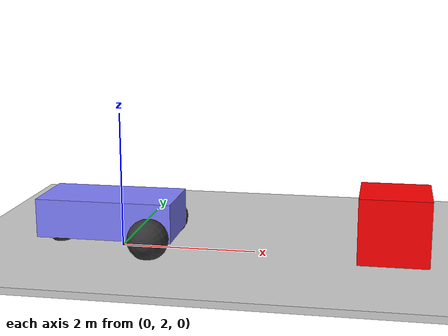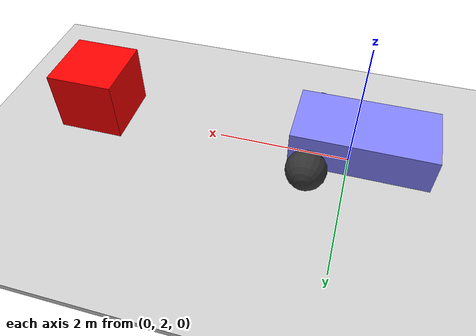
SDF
<?xml version="1.0" ?>
<!--
  You can echo lidar messages using:
    gz topic -e -t /lidar
-->
<sdf version="1.6">
  <world name="gpu_lidar_sensor">
    <physics name="1ms" type="ignored">
      <max_step_size>0.001</max_step_size>
      <real_time_factor>1.0</real_time_factor>
    </physics>
    <plugin
      filename="gz-sim-physics-system"
      name="gz::sim::systems::Physics">
    </plugin>
    <plugin
      filename="gz-sim-sensors-system"
      name="gz::sim::systems::Sensors">
      <render_engine>ogre2</render_engine>
    </plugin>
    <plugin
      filename="gz-sim-scene-broadcaster-system"
      name="gz::sim::systems::SceneBroadcaster">
    </plugin>
    <plugin
      filename="gz-sim-user-commands-system"
      name="gz::sim::systems::UserCommands">
    </plugin>

    <light type="directional" name="sun">
      <cast_shadows>true</cast_shadows>
      <pose>0 0 10 0 0 0</pose>
      <diffuse>0.8 0.8 0.8 1</diffuse>
      <specular>0.2 0.2 0.2 1</specular>
      <attenuation>
        <range>1000</range>
        <constant>0.9</constant>
        <linear>0.01</linear>
        <quadratic>0.001</quadratic>
      </attenuation>
      <direction>-0.5 0.1 -0.9</direction>
    </light>

    <model name="ground_plane">
      <static>true</static>
      <link name="link">
        <collision name="collision">
          <geometry>
            <box>
              <size>20 20 0.1</size>
            </box>
          </geometry>
        </collision>
        <visual name="visual">
          <geometry>
            <box>
              <size>20 20 0.1</size>
            </box>
          </geometry>
          <material>
            <ambient>0.8 0.8 0.8 1</ambient>
            <diffuse>0.8 0.8 0.8 1</diffuse>
            <specular>0.8 0.8 0.8 1</specular>
          </material>
        </visual>
      </link>
    </model>

    <model name='vehicle_blue'>
      <pose>0 2 0.325 0 -0 0</pose>
      <link name='chassis'>
        <pose>-0.151427 -0 0.175 0 -0 0</pose>
        <inertial>
          <mass>1.14395</mass>
          <inertia>
            <ixx>0.126164</ixx>
            <ixy>0</ixy>
            <ixz>0</ixz>
            <iyy>0.416519</iyy>
            <iyz>0</iyz>
            <izz>0.481014</izz>
          </inertia>
        </inertial>
        <visual name='visual'>
          <geometry>
            <box>
              <size>2.01142 1 0.568726</size>
            </box>
          </geometry>
          <material>
            <ambient>0.5 0.5 1.0 1</ambient>
            <diffuse>0.5 0.5 1.0 1</diffuse>
            <specular>0.0 0.0 1.0 1</specular>
          </material>
        </visual>
        <collision name='collision'>
          <geometry>
            <box>
              <size>2.01142 1 0.568726</size>
            </box>
          </geometry>
        </collision>

      </link>

      <link name="lidar_link">
        <pose>0.05 0 0.3 0 0 0</pose>
        <sensor name='gpu_lidar' type='gpu_lidar'>
          <topic>lidar</topic>
          <update_rate>10</update_rate>
          <lidar>
            <scan>
              <horizontal>
                <samples>640</samples>
                <resolution>1</resolution>
                <min_angle>-1.396263</min_angle>
                <max_angle>1.396263</max_angle>
              </horizontal>
              <vertical>
                <samples>16</samples>
                <resolution>1</resolution>
                <min_angle>-0.261799</min_angle>
                <max_angle>0.261799</max_angle>
              </vertical>
            </scan>
            <range>
              <min>0.08</min>
              <max>10.0</max>
              <resolution>0.01</resolution>
            </range>
          </lidar>
          <alwaysOn>1</alwaysOn>
          <visualize>true</visualize>
        </sensor>
      </link>

      <joint name="lidar_joint" type="fixed">
        <parent>chassis</parent>
        <child>lidar_link</child>
      </joint>

       <!-- Base footprint -->
          <link name="base_footprint">
      <pose>0 0 0 0 0 0</pose> <!-- Positioned at ground level -->
    </link>

    <!-- Fixed joint connecting base_footprint to base_link -->
    <joint name="base_footprint_joint" type="fixed">
      <parent>base_footprint</parent>
      <child>chassis</child>
    </joint>

      <link name='left_wheel'>
        <pose>0.554283 0.625029 -0.025 -1.5707 0 0</pose>
        <inertial>
          <mass>2</mass>
          <inertia>
            <ixx>0.145833</ixx>
            <ixy>0</ixy>
            <ixz>0</ixz>
            <iyy>0.145833</iyy>
            <iyz>0</iyz>
            <izz>0.125</izz>
          </inertia>
        </inertial>
        <visual name='visual'>
          <geometry>
            <sphere>
              <radius>0.3</radius>
            </sphere>
          </geometry>
          <material>
            <ambient>0.2 0.2 0.2 1</ambient>
            <diffuse>0.2 0.2 0.2 1</diffuse>
            <specular>0.2 0.2 0.2 1</specular>
          </material>
        </visual>
        <collision name='collision'>
          <geometry>
            <sphere>
              <radius>0.3</radius>
            </sphere>
          </geometry>
          <surface>
            <friction>
              <ode>
                <mu>1</mu>
                <mu2>1</mu2>
                <slip1>0.035</slip1>
                <slip2>0</slip2>
                <fdir1>0 0 1</fdir1>
              </ode>
              <bullet>
                <friction>1</friction>
                <friction2>1</friction2>
                <rolling_friction>0.1</rolling_friction>
              </bullet>
            </friction>
          </surface>
        </collision>
      </link>

      <link name='right_wheel'>
        <pose>0.554282 -0.625029 -0.025 -1.5707 0 0</pose>
        <inertial>
          <mass>2</mass>
          <inertia>
            <ixx>0.145833</ixx>
            <ixy>0</ixy>
            <ixz>0</ixz>
            <iyy>0.145833</iyy>
            <iyz>0</iyz>
            <izz>0.125</izz>
          </inertia>
        </inertial>
        <visual name='visual'>
          <geometry>
            <sphere>
              <radius>0.3</radius>
            </sphere>
          </geometry>
          <material>
            <ambient>0.2 0.2 0.2 1</ambient>
            <diffuse>0.2 0.2 0.2 1</diffuse>
            <specular>0.2 0.2 0.2 1</specular>
          </material>
        </visual>
        <collision name='collision'>
          <geometry>
            <sphere>
              <radius>0.3</radius>
            </sphere>
          </geometry>
          <surface>
            <friction>
              <ode>
                <mu>1</mu>
                <mu2>1</mu2>
                <slip1>0.035</slip1>
                <slip2>0</slip2>
                <fdir1>0 0 1</fdir1>
              </ode>
              <bullet>
                <friction>1</friction>
                <friction2>1</friction2>
                <rolling_friction>0.1</rolling_friction>
              </bullet>
            </friction>
          </surface>
        </collision>
      </link>

      <link name='caster'>
        <pose>-0.957138 -0 -0.125 0 -0 0</pose>
        <inertial>
          <mass>1</mass>
          <inertia>
            <ixx>0.1</ixx>
            <ixy>0</ixy>
            <ixz>0</ixz>
            <iyy>0.1</iyy>
            <iyz>0</iyz>
            <izz>0.1</izz>
          </inertia>
        </inertial>
        <visual name='visual'>
          <geometry>
            <sphere>
              <radius>0.2</radius>
            </sphere>
          </geometry>
          <material>
            <ambient>0.2 0.2 0.2 1</ambient>
            <diffuse>0.2 0.2 0.2 1</diffuse>
            <specular>0.2 0.2 0.2 1</specular>
          </material>
        </visual>
        <collision name='collision'>
          <geometry>
            <sphere>
              <radius>0.2</radius>
            </sphere>
          </geometry>
        </collision>
      </link>

      <joint name='left_wheel_joint' type='revolute'>
        <parent>chassis</parent>
        <child>left_wheel</child>
        <axis>
          <xyz>0 0 1</xyz>
          <limit>
            <lower>-1.79769e+308</lower>
            <upper>1.79769e+308</upper>
          </limit>
        </axis>
      </joint>

      <joint name='right_wheel_joint' type='revolute'>
        <parent>chassis</parent>
        <child>right_wheel</child>
        <axis>
          <xyz>0 0 1</xyz>
          <limit>
            <lower>-1.79769e+308</lower>
            <upper>1.79769e+308</upper>
          </limit>
        </axis>
      </joint>

      <joint name='caster_wheel' type='ball'>
        <parent>chassis</parent>
        <child>caster</child>
      </joint>

      <plugin
        filename="gz-sim-diff-drive-system"
        name="gz::sim::systems::DiffDrive">
        <left_joint>left_wheel_joint</left_joint>
        <right_joint>right_wheel_joint</right_joint>
        <wheel_separation>1.25</wheel_separation>
        <wheel_radius>0.3</wheel_radius>
        <max_linear_acceleration>1</max_linear_acceleration>
        <min_linear_acceleration>-1</min_linear_acceleration>
        <max_angular_acceleration>2</max_angular_acceleration>
        <min_angular_acceleration>-2</min_angular_acceleration>
        <max_linear_velocity>0.5</max_linear_velocity>
        <min_linear_velocity>-0.5</min_linear_velocity>
        <max_angular_velocity>1</max_angular_velocity>
        <min_angular_velocity>-1</min_angular_velocity>
        <topic>cmd_vel</topic>
                <tf_topic>tf_foo</tf_topic>
                <odom_topic>odom</odom_topic>
                <frame_id>odom</frame_id>
                <child_frame_id>vehicle_blue</child_frame_id>
                <odom_publisher_frequency>30</odom_publisher_frequency>

      </plugin>

      <plugin
                        filename="ignition-gazebo-joint-state-publisher-system"
                        name="ignition::gazebo::systems::JointStatePublisher">
                </plugin>

                <plugin
                        filename="ignition-gazebo-pose-publisher-system"
                        name="ignition::gazebo::systems::PosePublisher">
                        <publish_link_pose>true</publish_link_pose>
                        <use_pose_vector_msg>true</use_pose_vector_msg>
                        <publish_sensor_pose>true</publish_sensor_pose>
                </plugin>

    </model>

    <model name="box">
      <pose>4 2 0.5 0 0 0</pose>
      <link name="box_link">
        <inertial>
          <inertia>
            <ixx>1</ixx>
            <ixy>0</ixy>
            <ixz>0</ixz>
            <iyy>1</iyy>
            <iyz>0</iyz>
            <izz>1</izz>
          </inertia>
          <mass>1.0</mass>
        </inertial>
        <collision name="box_collision">
          <geometry>
            <box>
              <size>1 1 1</size>
            </box>
          </geometry>
        </collision>

        <visual name="box_visual">
          <geometry>
            <box>
              <size>1 1 1</size>
            </box>
          </geometry>
          <material>
            <ambient>1 0 0 1</ambient>
            <diffuse>1 0 0 1</diffuse>
            <specular>1 0 0 1</specular>
          </material>
        </visual>
      </link>
    </model>

<!-- Moving Left-->
        <plugin filename="gz-sim-triggered-publisher-system"
                name="gz::sim::systems::TriggeredPublisher">
            <input type="gz.msgs.Int32" topic="/keyboard/keypress">
                <match field="data">16777234</match>
            </input>
            <output type="gz.msgs.Twist" topic="/cmd_vel">
                linear: {x: 0.0}, angular: {z: 0.5}
            </output>
        </plugin>
        <!-- Moving Forward-->
        <plugin filename="gz-sim-triggered-publisher-system"
                name="gz::sim::systems::TriggeredPublisher">
            <input type="gz.msgs.Int32" topic="/keyboard/keypress">
                <match field="data">16777235</match>
            </input>
            <output type="gz.msgs.Twist" topic="/cmd_vel">
                linear: {x: 0.5}, angular: {z: 0.0}
            </output>
        </plugin>
        <!-- Moving Right-->
        <plugin filename="gz-sim-triggered-publisher-system"
                name="gz::sim::systems::TriggeredPublisher">
            <input type="gz.msgs.Int32" topic="/keyboard/keypress">
                <match field="data">16777236</match>
            </input>
            <output type="gz.msgs.Twist" topic="/cmd_vel">
                linear: {x: 0.0}, angular: {z: -0.5}
            </output>
        </plugin>
        <!-- Moving Backward-->
        <plugin filename="gz-sim-triggered-publisher-system"
                name="gz::sim::systems::TriggeredPublisher">
            <input type="gz.msgs.Int32" topic="/keyboard/keypress">
                <match field="data">16777237</match>
            </input>
            <output type="gz.msgs.Twist" topic="/cmd_vel">
                linear: {x: -0.5}, angular: {z: 0.0}
            </output>
        </plugin>
  </world>
</sdf>
